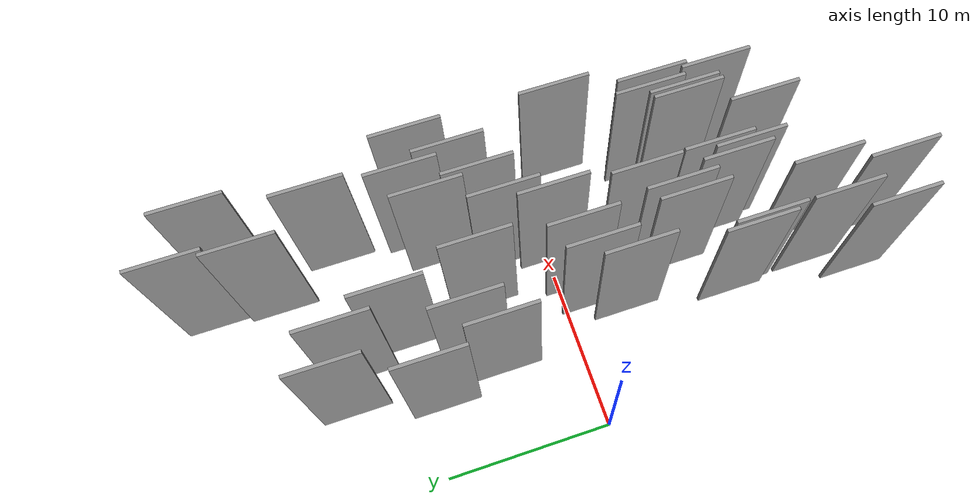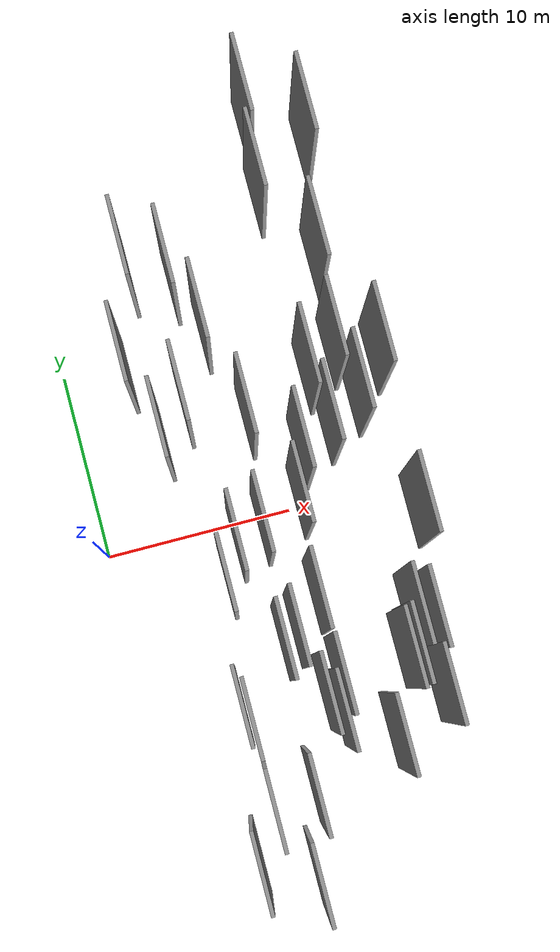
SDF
<sdf version="1.6">
 <world name="default">
  <scene>
   <sky><clouds><speed>12</speed></clouds></sky>
   <ambient>0.4 0.4 0.4 1</ambient>
   <background>0.7 0.7 0.7 1</background>
   <shadows>1</shadows>
  </scene>
  <gravity>0 0 -9.8066</gravity>
  <magnetic_field>6e-06 2.3e-05 -4.2e-05</magnetic_field>
  <physics default="0" name="default_physics" type="ode">
   <ode>
    <solver>
     <type>quick</type>
     <iters>10</iters>
     <sor>1.0</sor>
     <use_dynamic_moi_rescaling>0</use_dynamic_moi_rescaling>
    </solver>
    <constraints>
     <cfm>0</cfm>
     <erp>0.2</erp>
     <contact_max_correcting_vel>100</contact_max_correcting_vel>
     <contact_surface_layer>0.001</contact_surface_layer>
    </constraints>
   </ode>
   <max_step_size>0.004</max_step_size>
   <real_time_factor>1</real_time_factor>
   <real_time_update_rate>250</real_time_update_rate>
  </physics>
  <light name="sun" type="directional">
   <pose>0 0 10 0 0 0</pose>
   <diffuse>0.8 0.8 0.8 1</diffuse>
   <specular>0.2 0.2 0.2 1</specular>
   <attenuation>
    <range>1000</range>
    <constant>0.9</constant>
    <linear>0.01</linear>
    <quadratic>0.001</quadratic>
   </attenuation>
   <direction>-0.5 0.1 -0.9</direction>
  </light>
  <model name="grey_wall_1">
   <static>1</static>
   <pose>4.4890 4.7480 2.5 0.000000 0.000000 1.570796</pose>
   <link name="link">
    <pose>0 0 5.00 0 0 0</pose>
    <collision name="collision"><geometry><box><size>4.00 0.2 10.00</size></box></geometry></collision>
    <visual name="visual">
     <cast_shadows>0</cast_shadows>
     <geometry><box><size>4.00 0.2 10.00</size></box></geometry>
     <material>
      <script>
       <uri>model://grey_wall/materials/scripts</uri>
       <uri>model://grey_wall/materials/textures</uri>
       <name>vrc/grey_wall</name>
      </script>
     </material>
    </visual>
   </link>
  </model>
  <model name="grey_wall_2">
   <static>1</static>
   <pose>5.8138 -3.0721 2.5 0.000000 0.000000 1.570796</pose>
   <link name="link">
    <pose>0 0 5.00 0 0 0</pose>
    <collision name="collision"><geometry><box><size>4.00 0.2 10.00</size></box></geometry></collision>
    <visual name="visual">
     <cast_shadows>0</cast_shadows>
     <geometry><box><size>4.00 0.2 10.00</size></box></geometry>
     <material>
      <script>
       <uri>model://grey_wall/materials/scripts</uri>
       <uri>model://grey_wall/materials/textures</uri>
       <name>vrc/grey_wall</name>
      </script>
     </material>
    </visual>
   </link>
  </model>
  <model name="grey_wall_3">
   <static>1</static>
   <pose>14.3263 -6.8433 2.5 0.000000 0.000000 1.570796</pose>
   <link name="link">
    <pose>0 0 5.00 0 0 0</pose>
    <collision name="collision"><geometry><box><size>4.00 0.2 10.00</size></box></geometry></collision>
    <visual name="visual">
     <cast_shadows>0</cast_shadows>
     <geometry><box><size>4.00 0.2 10.00</size></box></geometry>
     <material>
      <script>
       <uri>model://grey_wall/materials/scripts</uri>
       <uri>model://grey_wall/materials/textures</uri>
       <name>vrc/grey_wall</name>
      </script>
     </material>
    </visual>
   </link>
  </model>
  <model name="grey_wall_4">
   <static>1</static>
   <pose>6.8269 12.7532 2.5 0.000000 0.000000 1.570796</pose>
   <link name="link">
    <pose>0 0 5.00 0 0 0</pose>
    <collision name="collision"><geometry><box><size>4.00 0.2 10.00</size></box></geometry></collision>
    <visual name="visual">
     <cast_shadows>0</cast_shadows>
     <geometry><box><size>4.00 0.2 10.00</size></box></geometry>
     <material>
      <script>
       <uri>model://grey_wall/materials/scripts</uri>
       <uri>model://grey_wall/materials/textures</uri>
       <name>vrc/grey_wall</name>
      </script>
     </material>
    </visual>
   </link>
  </model>
  <model name="grey_wall_5">
   <static>1</static>
   <pose>5.8905 6.1827 2.5 0.000000 0.000000 1.570796</pose>
   <link name="link">
    <pose>0 0 5.00 0 0 0</pose>
    <collision name="collision"><geometry><box><size>4.00 0.2 10.00</size></box></geometry></collision>
    <visual name="visual">
     <cast_shadows>0</cast_shadows>
     <geometry><box><size>4.00 0.2 10.00</size></box></geometry>
     <material>
      <script>
       <uri>model://grey_wall/materials/scripts</uri>
       <uri>model://grey_wall/materials/textures</uri>
       <name>vrc/grey_wall</name>
      </script>
     </material>
    </visual>
   </link>
  </model>
  <model name="grey_wall_6">
   <static>1</static>
   <pose>11.0642 2.5485 2.5 0.000000 0.000000 1.570796</pose>
   <link name="link">
    <pose>0 0 5.00 0 0 0</pose>
    <collision name="collision"><geometry><box><size>4.00 0.2 10.00</size></box></geometry></collision>
    <visual name="visual">
     <cast_shadows>0</cast_shadows>
     <geometry><box><size>4.00 0.2 10.00</size></box></geometry>
     <material>
      <script>
       <uri>model://grey_wall/materials/scripts</uri>
       <uri>model://grey_wall/materials/textures</uri>
       <name>vrc/grey_wall</name>
      </script>
     </material>
    </visual>
   </link>
  </model>
  <model name="grey_wall_7">
   <static>1</static>
   <pose>7.4055 -14.1734 2.5 0.000000 0.000000 1.570796</pose>
   <link name="link">
    <pose>0 0 5.00 0 0 0</pose>
    <collision name="collision"><geometry><box><size>4.00 0.2 10.00</size></box></geometry></collision>
    <visual name="visual">
     <cast_shadows>0</cast_shadows>
     <geometry><box><size>4.00 0.2 10.00</size></box></geometry>
     <material>
      <script>
       <uri>model://grey_wall/materials/scripts</uri>
       <uri>model://grey_wall/materials/textures</uri>
       <name>vrc/grey_wall</name>
      </script>
     </material>
    </visual>
   </link>
  </model>
  <model name="grey_wall_8">
   <static>1</static>
   <pose>4.8230 13.7067 2.5 0.000000 0.000000 1.570796</pose>
   <link name="link">
    <pose>0 0 5.00 0 0 0</pose>
    <collision name="collision"><geometry><box><size>4.00 0.2 10.00</size></box></geometry></collision>
    <visual name="visual">
     <cast_shadows>0</cast_shadows>
     <geometry><box><size>4.00 0.2 10.00</size></box></geometry>
     <material>
      <script>
       <uri>model://grey_wall/materials/scripts</uri>
       <uri>model://grey_wall/materials/textures</uri>
       <name>vrc/grey_wall</name>
      </script>
     </material>
    </visual>
   </link>
  </model>
  <model name="grey_wall_9">
   <static>1</static>
   <pose>9.6446 -10.7321 2.5 0.000000 0.000000 1.570796</pose>
   <link name="link">
    <pose>0 0 5.00 0 0 0</pose>
    <collision name="collision"><geometry><box><size>4.00 0.2 10.00</size></box></geometry></collision>
    <visual name="visual">
     <cast_shadows>0</cast_shadows>
     <geometry><box><size>4.00 0.2 10.00</size></box></geometry>
     <material>
      <script>
       <uri>model://grey_wall/materials/scripts</uri>
       <uri>model://grey_wall/materials/textures</uri>
       <name>vrc/grey_wall</name>
      </script>
     </material>
    </visual>
   </link>
  </model>
  <model name="grey_wall_10">
   <static>1</static>
   <pose>13.9346 7.2970 2.5 0.000000 0.000000 1.570796</pose>
   <link name="link">
    <pose>0 0 5.00 0 0 0</pose>
    <collision name="collision"><geometry><box><size>4.00 0.2 10.00</size></box></geometry></collision>
    <visual name="visual">
     <cast_shadows>0</cast_shadows>
     <geometry><box><size>4.00 0.2 10.00</size></box></geometry>
     <material>
      <script>
       <uri>model://grey_wall/materials/scripts</uri>
       <uri>model://grey_wall/materials/textures</uri>
       <name>vrc/grey_wall</name>
      </script>
     </material>
    </visual>
   </link>
  </model>
  <model name="grey_wall_11">
   <static>1</static>
   <pose>5.2571 -14.3523 2.5 0.000000 0.000000 1.570796</pose>
   <link name="link">
    <pose>0 0 5.00 0 0 0</pose>
    <collision name="collision"><geometry><box><size>4.00 0.2 10.00</size></box></geometry></collision>
    <visual name="visual">
     <cast_shadows>0</cast_shadows>
     <geometry><box><size>4.00 0.2 10.00</size></box></geometry>
     <material>
      <script>
       <uri>model://grey_wall/materials/scripts</uri>
       <uri>model://grey_wall/materials/textures</uri>
       <name>vrc/grey_wall</name>
      </script>
     </material>
    </visual>
   </link>
  </model>
  <model name="grey_wall_12">
   <static>1</static>
   <pose>12.3624 6.3493 2.5 0.000000 0.000000 1.570796</pose>
   <link name="link">
    <pose>0 0 5.00 0 0 0</pose>
    <collision name="collision"><geometry><box><size>4.00 0.2 10.00</size></box></geometry></collision>
    <visual name="visual">
     <cast_shadows>0</cast_shadows>
     <geometry><box><size>4.00 0.2 10.00</size></box></geometry>
     <material>
      <script>
       <uri>model://grey_wall/materials/scripts</uri>
       <uri>model://grey_wall/materials/textures</uri>
       <name>vrc/grey_wall</name>
      </script>
     </material>
    </visual>
   </link>
  </model>
  <model name="grey_wall_13">
   <static>1</static>
   <pose>12.0133 -12.5285 2.5 0.000000 0.000000 1.570796</pose>
   <link name="link">
    <pose>0 0 5.00 0 0 0</pose>
    <collision name="collision"><geometry><box><size>4.00 0.2 10.00</size></box></geometry></collision>
    <visual name="visual">
     <cast_shadows>0</cast_shadows>
     <geometry><box><size>4.00 0.2 10.00</size></box></geometry>
     <material>
      <script>
       <uri>model://grey_wall/materials/scripts</uri>
       <uri>model://grey_wall/materials/textures</uri>
       <name>vrc/grey_wall</name>
      </script>
     </material>
    </visual>
   </link>
  </model>
  <model name="grey_wall_14">
   <static>1</static>
   <pose>14.5094 4.5498 2.5 0.000000 0.000000 1.570796</pose>
   <link name="link">
    <pose>0 0 5.00 0 0 0</pose>
    <collision name="collision"><geometry><box><size>4.00 0.2 10.00</size></box></geometry></collision>
    <visual name="visual">
     <cast_shadows>0</cast_shadows>
     <geometry><box><size>4.00 0.2 10.00</size></box></geometry>
     <material>
      <script>
       <uri>model://grey_wall/materials/scripts</uri>
       <uri>model://grey_wall/materials/textures</uri>
       <name>vrc/grey_wall</name>
      </script>
     </material>
    </visual>
   </link>
  </model>
  <model name="grey_wall_15">
   <static>1</static>
   <pose>16.0511 6.4566 2.5 0.000000 0.000000 1.570796</pose>
   <link name="link">
    <pose>0 0 5.00 0 0 0</pose>
    <collision name="collision"><geometry><box><size>4.00 0.2 10.00</size></box></geometry></collision>
    <visual name="visual">
     <cast_shadows>0</cast_shadows>
     <geometry><box><size>4.00 0.2 10.00</size></box></geometry>
     <material>
      <script>
       <uri>model://grey_wall/materials/scripts</uri>
       <uri>model://grey_wall/materials/textures</uri>
       <name>vrc/grey_wall</name>
      </script>
     </material>
    </visual>
   </link>
  </model>
  <model name="grey_wall_16">
   <static>1</static>
   <pose>6.4888 -18.1323 2.5 0.000000 0.000000 1.570796</pose>
   <link name="link">
    <pose>0 0 5.00 0 0 0</pose>
    <collision name="collision"><geometry><box><size>4.00 0.2 10.00</size></box></geometry></collision>
    <visual name="visual">
     <cast_shadows>0</cast_shadows>
     <geometry><box><size>4.00 0.2 10.00</size></box></geometry>
     <material>
      <script>
       <uri>model://grey_wall/materials/scripts</uri>
       <uri>model://grey_wall/materials/textures</uri>
       <name>vrc/grey_wall</name>
      </script>
     </material>
    </visual>
   </link>
  </model>
  <model name="grey_wall_17">
   <static>1</static>
   <pose>3.5200 8.7308 2.5 0.000000 0.000000 1.570796</pose>
   <link name="link">
    <pose>0 0 5.00 0 0 0</pose>
    <collision name="collision"><geometry><box><size>4.00 0.2 10.00</size></box></geometry></collision>
    <visual name="visual">
     <cast_shadows>0</cast_shadows>
     <geometry><box><size>4.00 0.2 10.00</size></box></geometry>
     <material>
      <script>
       <uri>model://grey_wall/materials/scripts</uri>
       <uri>model://grey_wall/materials/textures</uri>
       <name>vrc/grey_wall</name>
      </script>
     </material>
    </visual>
   </link>
  </model>
  <model name="grey_wall_18">
   <static>1</static>
   <pose>14.7701 -10.8193 2.5 0.000000 0.000000 1.570796</pose>
   <link name="link">
    <pose>0 0 5.00 0 0 0</pose>
    <collision name="collision"><geometry><box><size>4.00 0.2 10.00</size></box></geometry></collision>
    <visual name="visual">
     <cast_shadows>0</cast_shadows>
     <geometry><box><size>4.00 0.2 10.00</size></box></geometry>
     <material>
      <script>
       <uri>model://grey_wall/materials/scripts</uri>
       <uri>model://grey_wall/materials/textures</uri>
       <name>vrc/grey_wall</name>
      </script>
     </material>
    </visual>
   </link>
  </model>
  <model name="grey_wall_19">
   <static>1</static>
   <pose>13.4697 -8.7221 2.5 0.000000 0.000000 1.570796</pose>
   <link name="link">
    <pose>0 0 5.00 0 0 0</pose>
    <collision name="collision"><geometry><box><size>4.00 0.2 10.00</size></box></geometry></collision>
    <visual name="visual">
     <cast_shadows>0</cast_shadows>
     <geometry><box><size>4.00 0.2 10.00</size></box></geometry>
     <material>
      <script>
       <uri>model://grey_wall/materials/scripts</uri>
       <uri>model://grey_wall/materials/textures</uri>
       <name>vrc/grey_wall</name>
      </script>
     </material>
    </visual>
   </link>
  </model>
  <model name="grey_wall_20">
   <static>1</static>
   <pose>7.7355 -6.8318 2.5 0.000000 0.000000 1.570796</pose>
   <link name="link">
    <pose>0 0 5.00 0 0 0</pose>
    <collision name="collision"><geometry><box><size>4.00 0.2 10.00</size></box></geometry></collision>
    <visual name="visual">
     <cast_shadows>0</cast_shadows>
     <geometry><box><size>4.00 0.2 10.00</size></box></geometry>
     <material>
      <script>
       <uri>model://grey_wall/materials/scripts</uri>
       <uri>model://grey_wall/materials/textures</uri>
       <name>vrc/grey_wall</name>
      </script>
     </material>
    </visual>
   </link>
  </model>
  <model name="grey_wall_21">
   <static>1</static>
   <pose>3.9329 -16.9139 2.5 0.000000 0.000000 1.570796</pose>
   <link name="link">
    <pose>0 0 5.00 0 0 0</pose>
    <collision name="collision"><geometry><box><size>4.00 0.2 10.00</size></box></geometry></collision>
    <visual name="visual">
     <cast_shadows>0</cast_shadows>
     <geometry><box><size>4.00 0.2 10.00</size></box></geometry>
     <material>
      <script>
       <uri>model://grey_wall/materials/scripts</uri>
       <uri>model://grey_wall/materials/textures</uri>
       <name>vrc/grey_wall</name>
      </script>
     </material>
    </visual>
   </link>
  </model>
  <model name="grey_wall_22">
   <static>1</static>
   <pose>9.9276 -4.9561 2.5 0.000000 0.000000 1.570796</pose>
   <link name="link">
    <pose>0 0 5.00 0 0 0</pose>
    <collision name="collision"><geometry><box><size>4.00 0.2 10.00</size></box></geometry></collision>
    <visual name="visual">
     <cast_shadows>0</cast_shadows>
     <geometry><box><size>4.00 0.2 10.00</size></box></geometry>
     <material>
      <script>
       <uri>model://grey_wall/materials/scripts</uri>
       <uri>model://grey_wall/materials/textures</uri>
       <name>vrc/grey_wall</name>
      </script>
     </material>
    </visual>
   </link>
  </model>
  <model name="grey_wall_23">
   <static>1</static>
   <pose>8.8322 4.7874 2.5 0.000000 0.000000 1.570796</pose>
   <link name="link">
    <pose>0 0 5.00 0 0 0</pose>
    <collision name="collision"><geometry><box><size>4.00 0.2 10.00</size></box></geometry></collision>
    <visual name="visual">
     <cast_shadows>0</cast_shadows>
     <geometry><box><size>4.00 0.2 10.00</size></box></geometry>
     <material>
      <script>
       <uri>model://grey_wall/materials/scripts</uri>
       <uri>model://grey_wall/materials/textures</uri>
       <name>vrc/grey_wall</name>
      </script>
     </material>
    </visual>
   </link>
  </model>
  <model name="grey_wall_24">
   <static>1</static>
   <pose>7.7628 9.7902 2.5 0.000000 0.000000 1.570796</pose>
   <link name="link">
    <pose>0 0 5.00 0 0 0</pose>
    <collision name="collision"><geometry><box><size>4.00 0.2 10.00</size></box></geometry></collision>
    <visual name="visual">
     <cast_shadows>0</cast_shadows>
     <geometry><box><size>4.00 0.2 10.00</size></box></geometry>
     <material>
      <script>
       <uri>model://grey_wall/materials/scripts</uri>
       <uri>model://grey_wall/materials/textures</uri>
       <name>vrc/grey_wall</name>
      </script>
     </material>
    </visual>
   </link>
  </model>
  <model name="grey_wall_25">
   <static>1</static>
   <pose>12.7371 3.4631 2.5 0.000000 0.000000 1.570796</pose>
   <link name="link">
    <pose>0 0 5.00 0 0 0</pose>
    <collision name="collision"><geometry><box><size>4.00 0.2 10.00</size></box></geometry></collision>
    <visual name="visual">
     <cast_shadows>0</cast_shadows>
     <geometry><box><size>4.00 0.2 10.00</size></box></geometry>
     <material>
      <script>
       <uri>model://grey_wall/materials/scripts</uri>
       <uri>model://grey_wall/materials/textures</uri>
       <name>vrc/grey_wall</name>
      </script>
     </material>
    </visual>
   </link>
  </model>
  <model name="grey_wall_26">
   <static>1</static>
   <pose>15.3584 18.2884 2.5 0.000000 0.000000 1.570796</pose>
   <link name="link">
    <pose>0 0 5.00 0 0 0</pose>
    <collision name="collision"><geometry><box><size>4.00 0.2 10.00</size></box></geometry></collision>
    <visual name="visual">
     <cast_shadows>0</cast_shadows>
     <geometry><box><size>4.00 0.2 10.00</size></box></geometry>
     <material>
      <script>
       <uri>model://grey_wall/materials/scripts</uri>
       <uri>model://grey_wall/materials/textures</uri>
       <name>vrc/grey_wall</name>
      </script>
     </material>
    </visual>
   </link>
  </model>
  <model name="grey_wall_27">
   <static>1</static>
   <pose>15.0411 -7.1855 2.5 0.000000 0.000000 1.570796</pose>
   <link name="link">
    <pose>0 0 5.00 0 0 0</pose>
    <collision name="collision"><geometry><box><size>4.00 0.2 10.00</size></box></geometry></collision>
    <visual name="visual">
     <cast_shadows>0</cast_shadows>
     <geometry><box><size>4.00 0.2 10.00</size></box></geometry>
     <material>
      <script>
       <uri>model://grey_wall/materials/scripts</uri>
       <uri>model://grey_wall/materials/textures</uri>
       <name>vrc/grey_wall</name>
      </script>
     </material>
    </visual>
   </link>
  </model>
  <model name="grey_wall_28">
   <static>1</static>
   <pose>12.2902 16.2253 2.5 0.000000 0.000000 1.570796</pose>
   <link name="link">
    <pose>0 0 5.00 0 0 0</pose>
    <collision name="collision"><geometry><box><size>4.00 0.2 10.00</size></box></geometry></collision>
    <visual name="visual">
     <cast_shadows>0</cast_shadows>
     <geometry><box><size>4.00 0.2 10.00</size></box></geometry>
     <material>
      <script>
       <uri>model://grey_wall/materials/scripts</uri>
       <uri>model://grey_wall/materials/textures</uri>
       <name>vrc/grey_wall</name>
      </script>
     </material>
    </visual>
   </link>
  </model>
  <model name="grey_wall_29">
   <static>1</static>
   <pose>12.5958 19.9650 2.5 0.000000 0.000000 1.570796</pose>
   <link name="link">
    <pose>0 0 5.00 0 0 0</pose>
    <collision name="collision"><geometry><box><size>4.00 0.2 10.00</size></box></geometry></collision>
    <visual name="visual">
     <cast_shadows>0</cast_shadows>
     <geometry><box><size>4.00 0.2 10.00</size></box></geometry>
     <material>
      <script>
       <uri>model://grey_wall/materials/scripts</uri>
       <uri>model://grey_wall/materials/textures</uri>
       <name>vrc/grey_wall</name>
      </script>
     </material>
    </visual>
   </link>
  </model>
  <model name="grey_wall_30">
   <static>1</static>
   <pose>9.9915 -9.0840 2.5 0.000000 0.000000 1.570796</pose>
   <link name="link">
    <pose>0 0 5.00 0 0 0</pose>
    <collision name="collision"><geometry><box><size>4.00 0.2 10.00</size></box></geometry></collision>
    <visual name="visual">
     <cast_shadows>0</cast_shadows>
     <geometry><box><size>4.00 0.2 10.00</size></box></geometry>
     <material>
      <script>
       <uri>model://grey_wall/materials/scripts</uri>
       <uri>model://grey_wall/materials/textures</uri>
       <name>vrc/grey_wall</name>
      </script>
     </material>
    </visual>
   </link>
  </model>
  <model name="grey_wall_31">
   <static>1</static>
   <pose>5.2681 -10.0111 2.5 0.000000 0.000000 1.570796</pose>
   <link name="link">
    <pose>0 0 5.00 0 0 0</pose>
    <collision name="collision"><geometry><box><size>4.00 0.2 10.00</size></box></geometry></collision>
    <visual name="visual">
     <cast_shadows>0</cast_shadows>
     <geometry><box><size>4.00 0.2 10.00</size></box></geometry>
     <material>
      <script>
       <uri>model://grey_wall/materials/scripts</uri>
       <uri>model://grey_wall/materials/textures</uri>
       <name>vrc/grey_wall</name>
      </script>
     </material>
    </visual>
   </link>
  </model>
  <model name="grey_wall_32">
   <static>1</static>
   <pose>8.5119 -6.3933 2.5 0.000000 0.000000 1.570796</pose>
   <link name="link">
    <pose>0 0 5.00 0 0 0</pose>
    <collision name="collision"><geometry><box><size>4.00 0.2 10.00</size></box></geometry></collision>
    <visual name="visual">
     <cast_shadows>0</cast_shadows>
     <geometry><box><size>4.00 0.2 10.00</size></box></geometry>
     <material>
      <script>
       <uri>model://grey_wall/materials/scripts</uri>
       <uri>model://grey_wall/materials/textures</uri>
       <name>vrc/grey_wall</name>
      </script>
     </material>
    </visual>
   </link>
  </model>
  <model name="grey_wall_33">
   <static>1</static>
   <pose>15.9993 -1.8910 2.5 0.000000 0.000000 1.570796</pose>
   <link name="link">
    <pose>0 0 5.00 0 0 0</pose>
    <collision name="collision"><geometry><box><size>4.00 0.2 10.00</size></box></geometry></collision>
    <visual name="visual">
     <cast_shadows>0</cast_shadows>
     <geometry><box><size>4.00 0.2 10.00</size></box></geometry>
     <material>
      <script>
       <uri>model://grey_wall/materials/scripts</uri>
       <uri>model://grey_wall/materials/textures</uri>
       <name>vrc/grey_wall</name>
      </script>
     </material>
    </visual>
   </link>
  </model>
  <model name="grey_wall_34">
   <static>1</static>
   <pose>10.3719 0.0462 2.5 0.000000 0.000000 1.570796</pose>
   <link name="link">
    <pose>0 0 5.00 0 0 0</pose>
    <collision name="collision"><geometry><box><size>4.00 0.2 10.00</size></box></geometry></collision>
    <visual name="visual">
     <cast_shadows>0</cast_shadows>
     <geometry><box><size>4.00 0.2 10.00</size></box></geometry>
     <material>
      <script>
       <uri>model://grey_wall/materials/scripts</uri>
       <uri>model://grey_wall/materials/textures</uri>
       <name>vrc/grey_wall</name>
      </script>
     </material>
    </visual>
   </link>
  </model>
  <model name="grey_wall_35">
   <static>1</static>
   <pose>14.3446 12.1935 2.5 0.000000 0.000000 1.570796</pose>
   <link name="link">
    <pose>0 0 5.00 0 0 0</pose>
    <collision name="collision"><geometry><box><size>4.00 0.2 10.00</size></box></geometry></collision>
    <visual name="visual">
     <cast_shadows>0</cast_shadows>
     <geometry><box><size>4.00 0.2 10.00</size></box></geometry>
     <material>
      <script>
       <uri>model://grey_wall/materials/scripts</uri>
       <uri>model://grey_wall/materials/textures</uri>
       <name>vrc/grey_wall</name>
      </script>
     </material>
    </visual>
   </link>
  </model>
  <model name="grey_wall_36">
   <static>1</static>
   <pose>13.8182 -8.6065 2.5 0.000000 0.000000 1.570796</pose>
   <link name="link">
    <pose>0 0 5.00 0 0 0</pose>
    <collision name="collision"><geometry><box><size>4.00 0.2 10.00</size></box></geometry></collision>
    <visual name="visual">
     <cast_shadows>0</cast_shadows>
     <geometry><box><size>4.00 0.2 10.00</size></box></geometry>
     <material>
      <script>
       <uri>model://grey_wall/materials/scripts</uri>
       <uri>model://grey_wall/materials/textures</uri>
       <name>vrc/grey_wall</name>
      </script>
     </material>
    </visual>
   </link>
  </model>
  <model name="grey_wall_37">
   <static>1</static>
   <pose>6.7677 -1.3553 2.5 0.000000 0.000000 1.570796</pose>
   <link name="link">
    <pose>0 0 5.00 0 0 0</pose>
    <collision name="collision"><geometry><box><size>4.00 0.2 10.00</size></box></geometry></collision>
    <visual name="visual">
     <cast_shadows>0</cast_shadows>
     <geometry><box><size>4.00 0.2 10.00</size></box></geometry>
     <material>
      <script>
       <uri>model://grey_wall/materials/scripts</uri>
       <uri>model://grey_wall/materials/textures</uri>
       <name>vrc/grey_wall</name>
      </script>
     </material>
    </visual>
   </link>
  </model>
  <model name="grey_wall_38">
   <static>1</static>
   <pose>8.1975 -0.8304 2.5 0.000000 0.000000 1.570796</pose>
   <link name="link">
    <pose>0 0 5.00 0 0 0</pose>
    <collision name="collision"><geometry><box><size>4.00 0.2 10.00</size></box></geometry></collision>
    <visual name="visual">
     <cast_shadows>0</cast_shadows>
     <geometry><box><size>4.00 0.2 10.00</size></box></geometry>
     <material>
      <script>
       <uri>model://grey_wall/materials/scripts</uri>
       <uri>model://grey_wall/materials/textures</uri>
       <name>vrc/grey_wall</name>
      </script>
     </material>
    </visual>
   </link>
  </model>
  <model name="grey_wall_39">
   <static>1</static>
   <pose>9.1349 -9.7910 2.5 0.000000 0.000000 1.570796</pose>
   <link name="link">
    <pose>0 0 5.00 0 0 0</pose>
    <collision name="collision"><geometry><box><size>4.00 0.2 10.00</size></box></geometry></collision>
    <visual name="visual">
     <cast_shadows>0</cast_shadows>
     <geometry><box><size>4.00 0.2 10.00</size></box></geometry>
     <material>
      <script>
       <uri>model://grey_wall/materials/scripts</uri>
       <uri>model://grey_wall/materials/textures</uri>
       <name>vrc/grey_wall</name>
      </script>
     </material>
    </visual>
   </link>
  </model>
  <model name="grey_wall_40">
   <static>1</static>
   <pose>4.9759 -9.3531 2.5 0.000000 0.000000 1.570796</pose>
   <link name="link">
    <pose>0 0 5.00 0 0 0</pose>
    <collision name="collision"><geometry><box><size>4.00 0.2 10.00</size></box></geometry></collision>
    <visual name="visual">
     <cast_shadows>0</cast_shadows>
     <geometry><box><size>4.00 0.2 10.00</size></box></geometry>
     <material>
      <script>
       <uri>model://grey_wall/materials/scripts</uri>
       <uri>model://grey_wall/materials/textures</uri>
       <name>vrc/grey_wall</name>
      </script>
     </material>
    </visual>
   </link>
  </model>
 </world>
</sdf>
